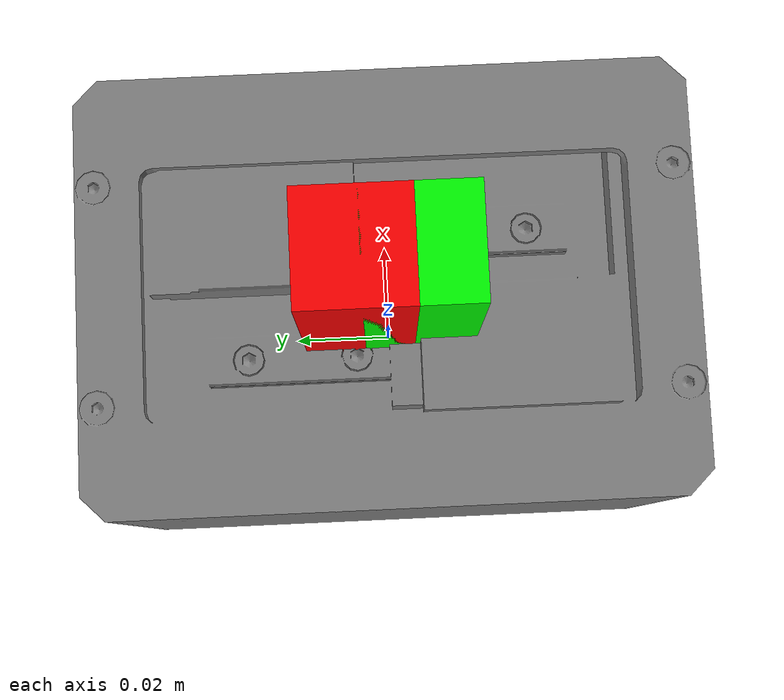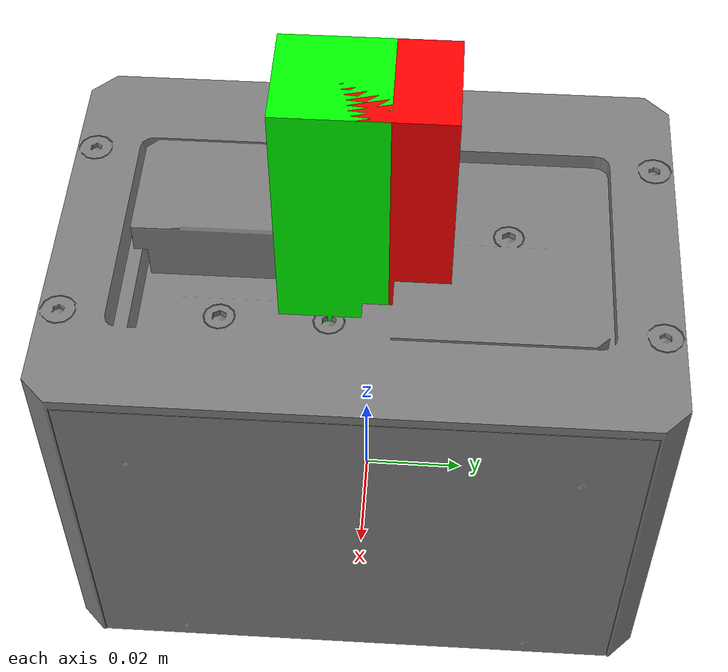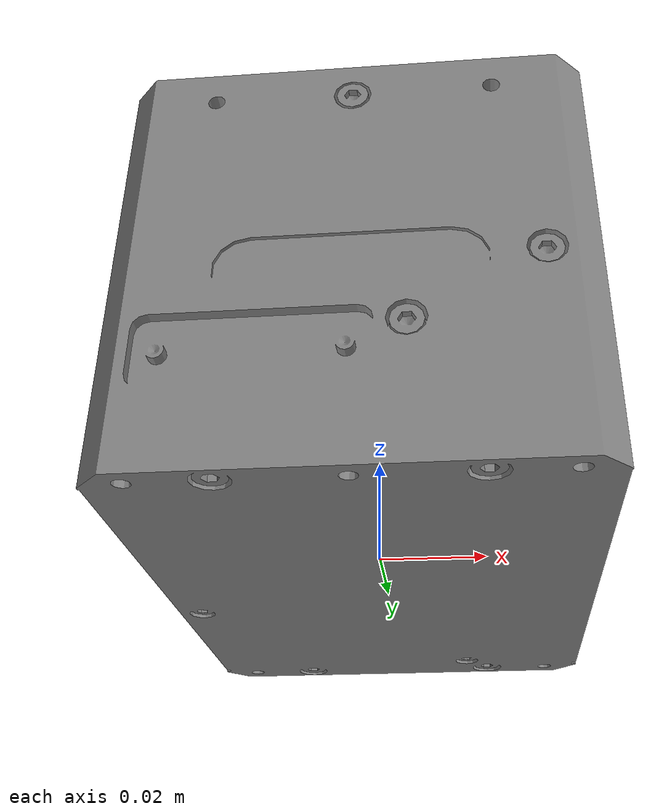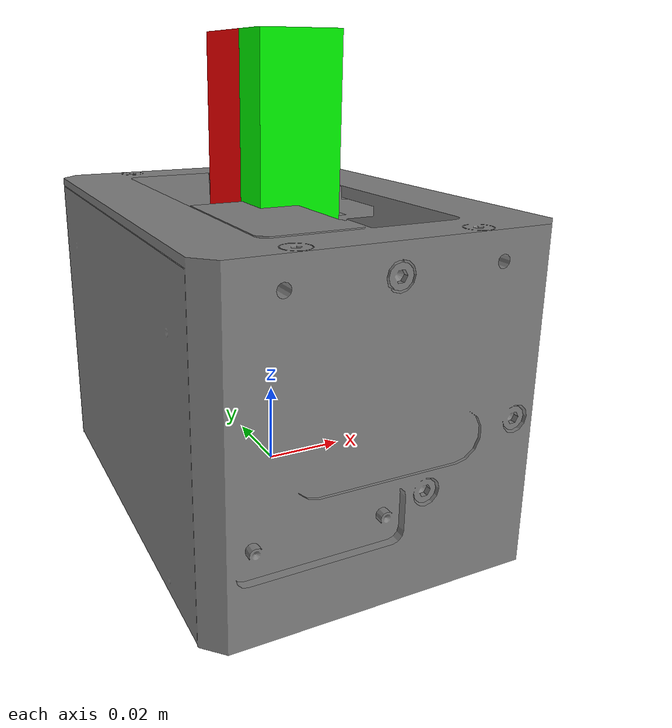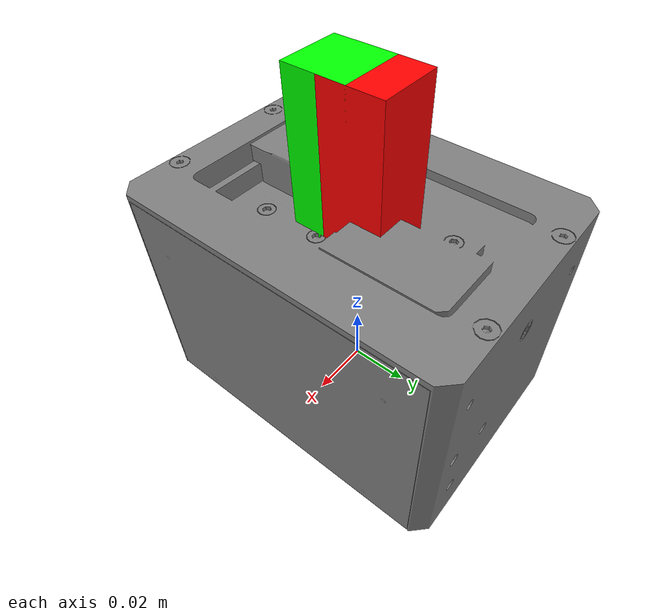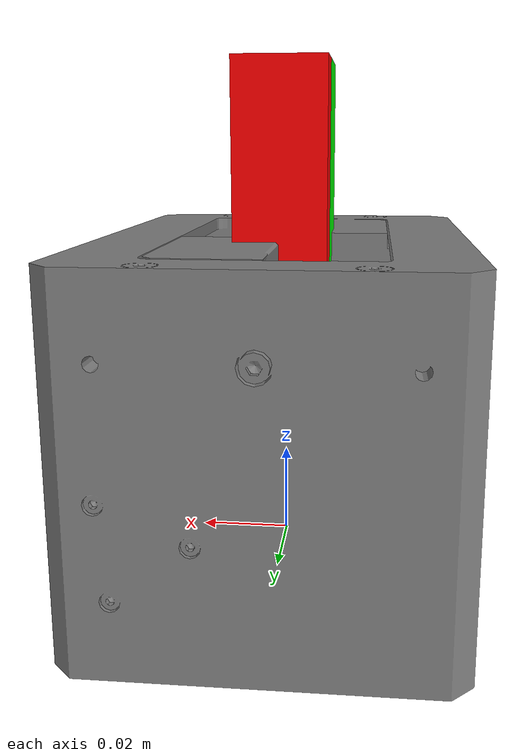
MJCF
<mujoco model="pg70">
  <compiler angle="radian" meshdir="meshes"/>

  <asset>
    <mesh name="pg70" file="pg70/pg70.stl" />
  </asset>

  <worldbody>
    <light name="top" pos="0 0 2" mode="trackcom"/>
    <body name="pg70_palm_link">
      <inertial pos="0 0 0" mass="1" diaginertia="0.01 0.01 0.01" />
      <geom type="mesh" mesh="pg70" />
      <body name="pg70_finger_left_link" pos="0 0.0055 0.0789">
        <inertial pos="0 0 0" mass="1" diaginertia="0.01 0.01 0.01" />
        <joint name="pg70_finger_left_joint" axis="0 1 0" type="slide" range="-0.001 0.0301" actuatorfrcrange="-10 10" />
        <geom size="0.01 0.01 0.03" type="box" rgba="1 0 0 1" />
      </body>
      <body name="pg70_finger_right_link" pos="0 -0.0055 0.0789">
        <inertial pos="0 0 0" mass="1" diaginertia="0.01 0.01 0.01" />
        <joint name="pg70_finger_right_joint" axis="0 -1 0" type="slide" range="-0.001 0.0301" actuatorfrcrange="-10 10" />
        <geom size="0.01 0.01 0.03" type="box" rgba="0 1 0 1" />
      </body>
    </body>
  </worldbody>

  <actuator>
    <position ctrllimited="true" ctrlrange="-0.001 0.0301" joint="pg70_finger_left_joint"/>
    <position ctrllimited="true" ctrlrange="-0.001 0.0301" joint="pg70_finger_right_joint"/>
  </actuator>
</mujoco>
